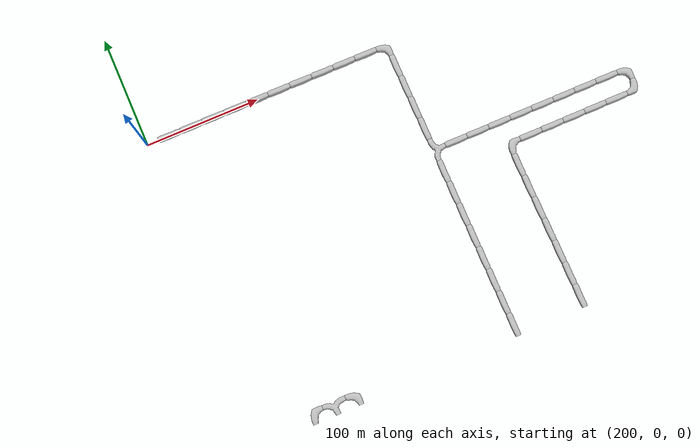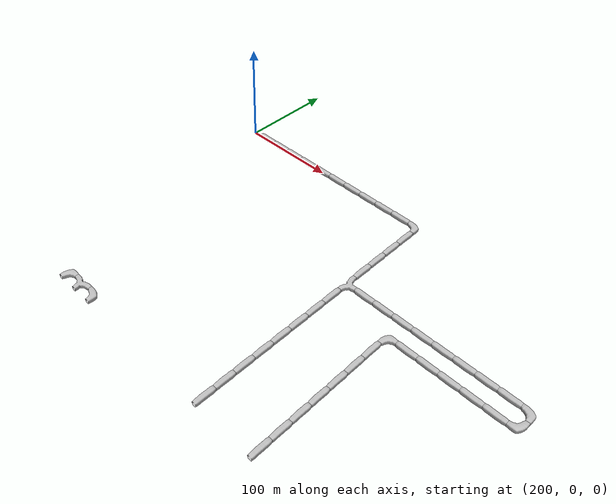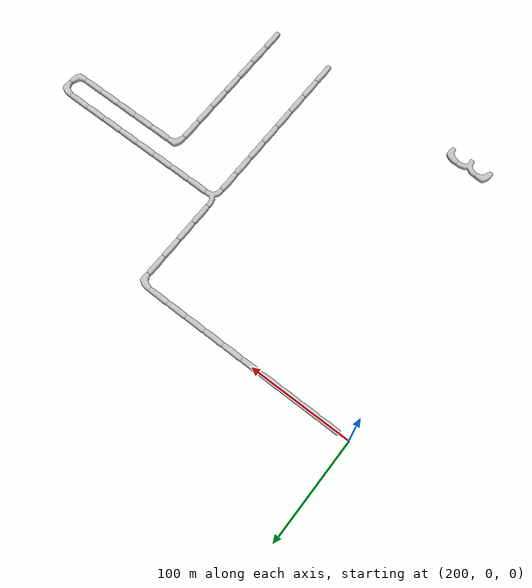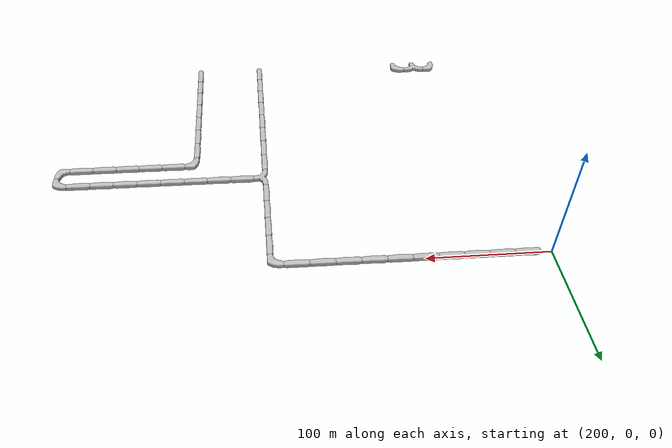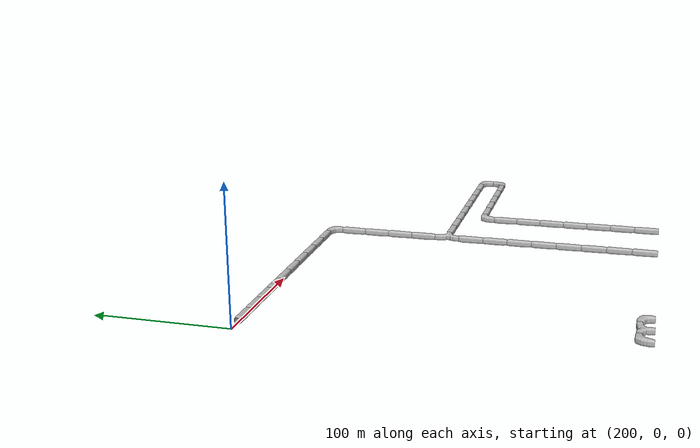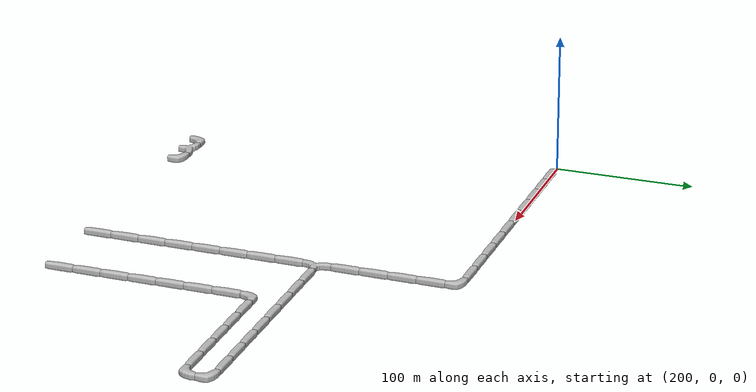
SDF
<sdf version="1.6">
 <world name="cave_4000_0">
  <include>
   <static>true</static>
   <name>cave_11_0</name>
   <pose>220 0 0 0 0 1.5707963267948966</pose>
   <uri>model://cave_straight_20m</uri>
  </include>
  <include>
   <static>true</static>
   <name>cave_12_0</name>
   <pose>240 0 0 0 0 1.5707963267948966</pose>
   <uri>model://cave_straight_20m</uri>
  </include>
  <include>
   <static>true</static>
   <name>cave_13_0</name>
   <pose>260 0 0 0 0 1.5707963267948966</pose>
   <uri>model://cave_straight_20m</uri>
  </include>
  <include>
   <static>true</static>
   <name>cave_14_0</name>
   <pose>280 0 0 0 0 1.5707963267948966</pose>
   <uri>model://cave_straight_20m</uri>
  </include>
  <include>
   <static>true</static>
   <name>cave_15_0</name>
   <pose>300 0 0 0 0 1.5707963267948966</pose>
   <uri>model://cave_straight_20m</uri>
  </include>
  <include>
   <static>true</static>
   <name>cave_16_0</name>
   <pose>320 0 0 0 0 1.5707963267948966</pose>
   <uri>model://cave_straight_20m</uri>
  </include>
  <include>
   <static>true</static>
   <name>cave_17_0</name>
   <pose>340 0 0 0 0 1.5707963267948966</pose>
   <uri>model://cave_straight_20m</uri>
  </include>
  <include>
   <static>true</static>
   <name>cave_18_0</name>
   <pose>360 0 0 0 0 1.5707963267948966</pose>
   <uri>model://cave_straight_20m</uri>
  </include>
  <include>
   <static>true</static>
   <name>cave_19_0</name>
   <pose>380 0 0 0 0 1.5707963267948966</pose>
   <uri>model://cave_straight_20m</uri>
  </include>
  <include>
   <static>true</static>
   <name>cave_20_0</name>
   <pose>400 0 0 0 0 1.5707963267948966</pose>
   <uri>model://cave_straight_20m</uri>
  </include>
  <include>
   <static>true</static>
   <name>cave_21_0</name>
   <pose>420 0 0 0 0 3.141592653589793</pose>
   <uri>model://cave_L_20m</uri>
  </include>
  <include>
   <static>true</static>
   <name>cave_21_-1</name>
   <pose>420 -20 0 0 0 0.0</pose>
   <uri>model://cave_straight_20m</uri>
  </include>
  <include>
   <static>true</static>
   <name>cave_21_-2</name>
   <pose>420 -40 0 0 0 0.0</pose>
   <uri>model://cave_straight_20m</uri>
  </include>
  <include>
   <static>true</static>
   <name>cave_21_-3</name>
   <pose>420 -60 0 0 0 0.0</pose>
   <uri>model://cave_straight_20m</uri>
  </include>
  <include>
   <static>true</static>
   <name>cave_21_-4</name>
   <pose>420 -80 0 0 0 0.0</pose>
   <uri>model://cave_straight_20m</uri>
  </include>
  <include>
   <static>true</static>
   <name>cave_21_-5</name>
   <pose>420 -100 0 0 0 -1.5707963267948966</pose>
   <uri>model://cave_3way_20m</uri>
  </include>
  <include>
   <static>true</static>
   <name>cave_22_-5</name>
   <pose>440 -100 0 0 0 1.5707963267948966</pose>
   <uri>model://cave_straight_20m</uri>
  </include>
  <include>
   <static>true</static>
   <name>cave_23_-5</name>
   <pose>460 -100 0 0 0 1.5707963267948966</pose>
   <uri>model://cave_straight_20m</uri>
  </include>
  <include>
   <static>true</static>
   <name>cave_24_-5</name>
   <pose>480 -100 0 0 0 1.5707963267948966</pose>
   <uri>model://cave_straight_20m</uri>
  </include>
  <include>
   <static>true</static>
   <name>cave_25_-5</name>
   <pose>500 -100 0 0 0 1.5707963267948966</pose>
   <uri>model://cave_straight_20m</uri>
  </include>
  <include>
   <static>true</static>
   <name>cave_26_-5</name>
   <pose>520 -100 0 0 0 1.5707963267948966</pose>
   <uri>model://cave_straight_20m</uri>
  </include>
  <include>
   <static>true</static>
   <name>cave_27_-5</name>
   <pose>540 -100 0 0 0 1.5707963267948966</pose>
   <uri>model://cave_straight_20m</uri>
  </include>
  <include>
   <static>true</static>
   <name>cave_28_-5</name>
   <pose>560 -100 0 0 0 1.5707963267948966</pose>
   <uri>model://cave_straight_20m</uri>
  </include>
  <include>
   <static>true</static>
   <name>cave_29_-5</name>
   <pose>580 -100 0 0 0 1.5707963267948966</pose>
   <uri>model://cave_straight_20m</uri>
  </include>
  <include>
   <static>true</static>
   <name>cave_30_-5</name>
   <pose>600 -100 0 0 0 3.141592653589793</pose>
   <uri>model://cave_L_20m</uri>
  </include>
  <include>
   <static>true</static>
   <name>cave_30_-6</name>
   <pose>600 -120 0 0 0 1.5707963267948966</pose>
   <uri>model://cave_L_20m</uri>
  </include>
  <include>
   <static>true</static>
   <name>cave_29_-6</name>
   <pose>580 -120 0 0 0 1.5707963267948966</pose>
   <uri>model://cave_straight_20m</uri>
  </include>
  <include>
   <static>true</static>
   <name>cave_28_-6</name>
   <pose>560 -120 0 0 0 1.5707963267948966</pose>
   <uri>model://cave_straight_20m</uri>
  </include>
  <include>
   <static>true</static>
   <name>cave_27_-6</name>
   <pose>540 -120 0 0 0 1.5707963267948966</pose>
   <uri>model://cave_straight_20m</uri>
  </include>
  <include>
   <static>true</static>
   <name>cave_26_-6</name>
   <pose>520 -120 0 0 0 1.5707963267948966</pose>
   <uri>model://cave_straight_20m</uri>
  </include>
  <include>
   <static>true</static>
   <name>cave_25_-6</name>
   <pose>500 -120 0 0 0 1.5707963267948966</pose>
   <uri>model://cave_straight_20m</uri>
  </include>
  <include>
   <static>true</static>
   <name>cave_24_-6</name>
   <pose>480 -120 0 0 0 -1.5707963267948966</pose>
   <uri>model://cave_L_20m</uri>
  </include>
  <include>
   <static>true</static>
   <name>cave_24_-7</name>
   <pose>480 -140 0 0 0 0.0</pose>
   <uri>model://cave_straight_20m</uri>
  </include>
  <include>
   <static>true</static>
   <name>cave_24_-8</name>
   <pose>480 -160 0 0 0 0.0</pose>
   <uri>model://cave_straight_20m</uri>
  </include>
  <include>
   <static>true</static>
   <name>cave_24_-9</name>
   <pose>480 -180 0 0 0 0.0</pose>
   <uri>model://cave_straight_20m</uri>
  </include>
  <include>
   <static>true</static>
   <name>cave_24_-10</name>
   <pose>480 -200 0 0 0 0.0</pose>
   <uri>model://cave_straight_20m</uri>
  </include>
  <include>
   <static>true</static>
   <name>cave_24_-11</name>
   <pose>480 -220 0 0 0 0.0</pose>
   <uri>model://cave_straight_20m</uri>
  </include>
  <include>
   <static>true</static>
   <name>cave_24_-12</name>
   <pose>480 -240 0 0 0 0.0</pose>
   <uri>model://cave_straight_20m</uri>
  </include>
  <include>
   <static>true</static>
   <name>cave_24_-13</name>
   <pose>480 -260 0 0 0 0.0</pose>
   <uri>model://cave_straight_20m</uri>
  </include>
  <include>
   <static>true</static>
   <name>cave_21_-6</name>
   <pose>420 -120 0 0 0 0.0</pose>
   <uri>model://cave_straight_20m</uri>
  </include>
  <include>
   <static>true</static>
   <name>cave_21_-7</name>
   <pose>420 -140 0 0 0 0.0</pose>
   <uri>model://cave_straight_20m</uri>
  </include>
  <include>
   <static>true</static>
   <name>cave_21_-8</name>
   <pose>420 -160 0 0 0 0.0</pose>
   <uri>model://cave_straight_20m</uri>
  </include>
  <include>
   <static>true</static>
   <name>cave_21_-9</name>
   <pose>420 -180 0 0 0 0.0</pose>
   <uri>model://cave_straight_20m</uri>
  </include>
  <include>
   <static>true</static>
   <name>cave_21_-10</name>
   <pose>420 -200 0 0 0 0.0</pose>
   <uri>model://cave_straight_20m</uri>
  </include>
  <include>
   <static>true</static>
   <name>cave_21_-11</name>
   <pose>420 -220 0 0 0 0.0</pose>
   <uri>model://cave_straight_20m</uri>
  </include>
  <include>
   <static>true</static>
   <name>cave_21_-12</name>
   <pose>420 -240 0 0 0 0.0</pose>
   <uri>model://cave_straight_20m</uri>
  </include>
  <include>
   <static>true</static>
   <name>cave_21_-13</name>
   <pose>420 -260 0 0 0 0.0</pose>
   <uri>model://cave_straight_20m</uri>
  </include>
  <include>
   <static>true</static>
   <name>cave_12_-13</name>
   <pose>240 -260 0 0 0 -1.5707963267948966</pose>
   <uri>model://cave_L_20m</uri>
  </include>
  <include>
   <static>true</static>
   <name>cave_13_-13</name>
   <pose>260 -260 0 0 0 3.141592653589793</pose>
   <uri>model://cave_3way_20m</uri>
  </include>
  <include>
   <static>true</static>
   <name>cave_14_-13</name>
   <pose>280 -260 0 0 0 3.141592653589793</pose>
   <uri>model://cave_L_20m</uri>
  </include>
 </world>
</sdf>
